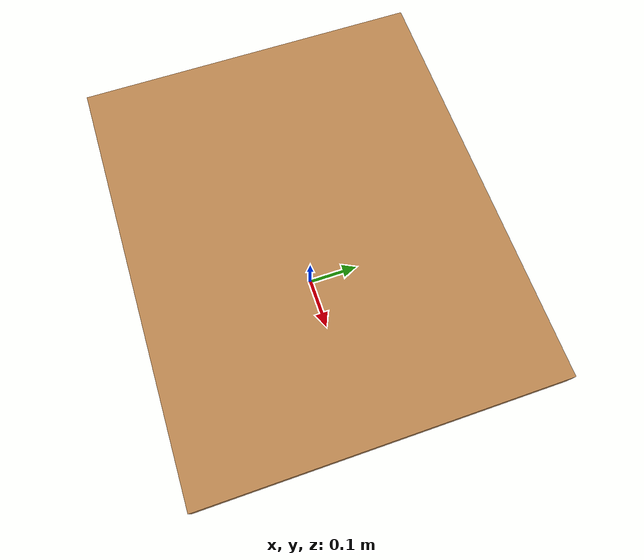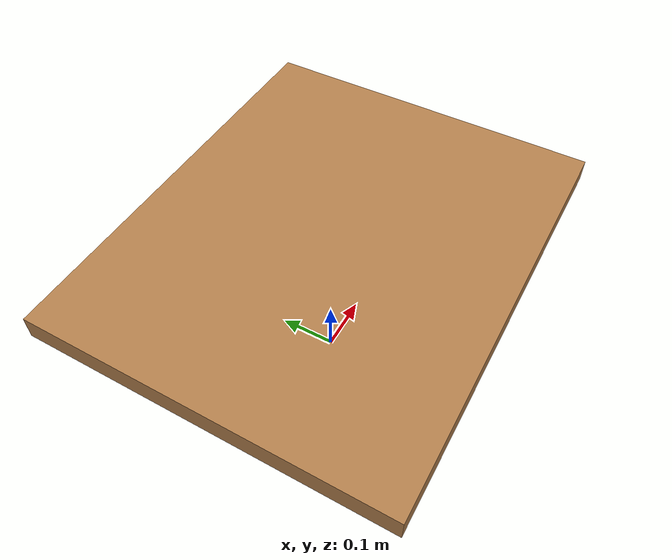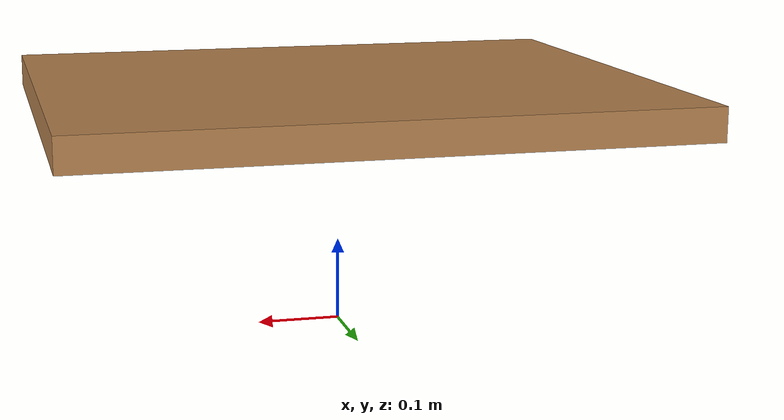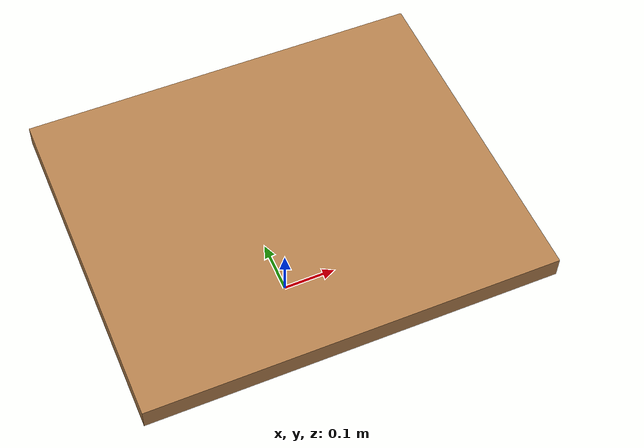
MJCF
<mujoco model="hinge_cab">
  <asset>
    <texture file="visuals/wood1.png" type="2d" name="tex"/>
    <material name="mat" reflectance="0.1" shininess="0.1" texrepeat="3 3" texuniform="true" texture="tex"/>
  </asset>
  <default>
    <default class="cab">
      <geom group="0" density="10"/>
    </default>
  </default>
  <worldbody>
    <body>
      <body name="object">
        <geom pos="0.0 0 0.28" size="0.36 0.3 0.02" type="box" material="mat" class="cab" name="shelf"/>
      </body>
    </body>
  </worldbody>
</mujoco>
